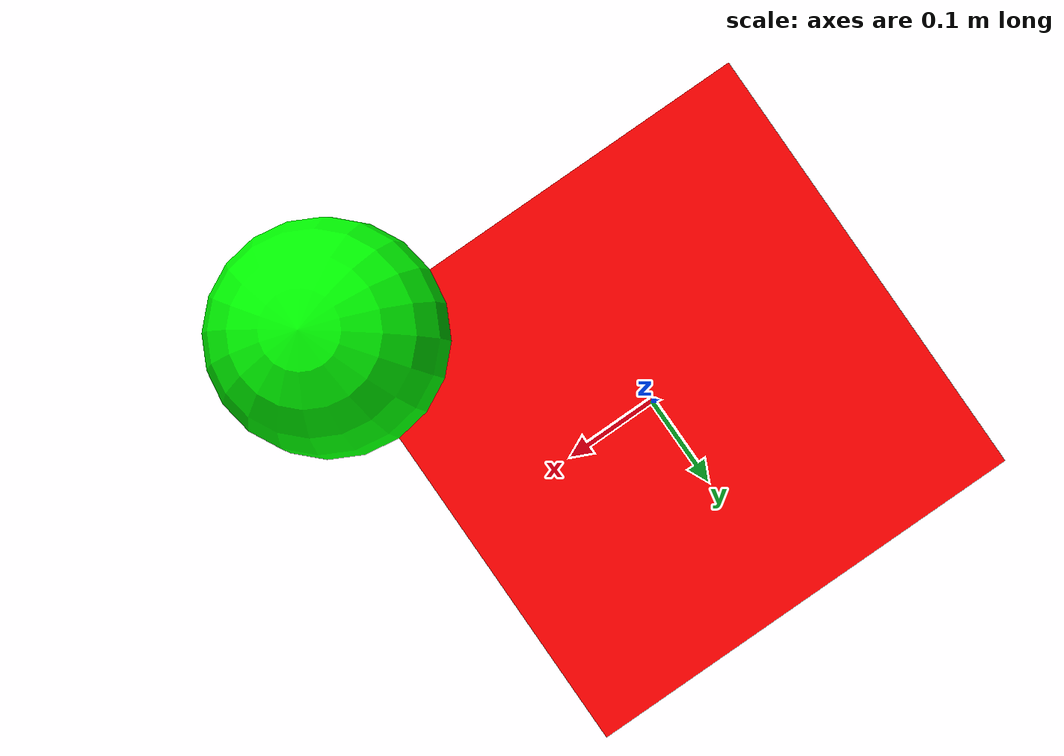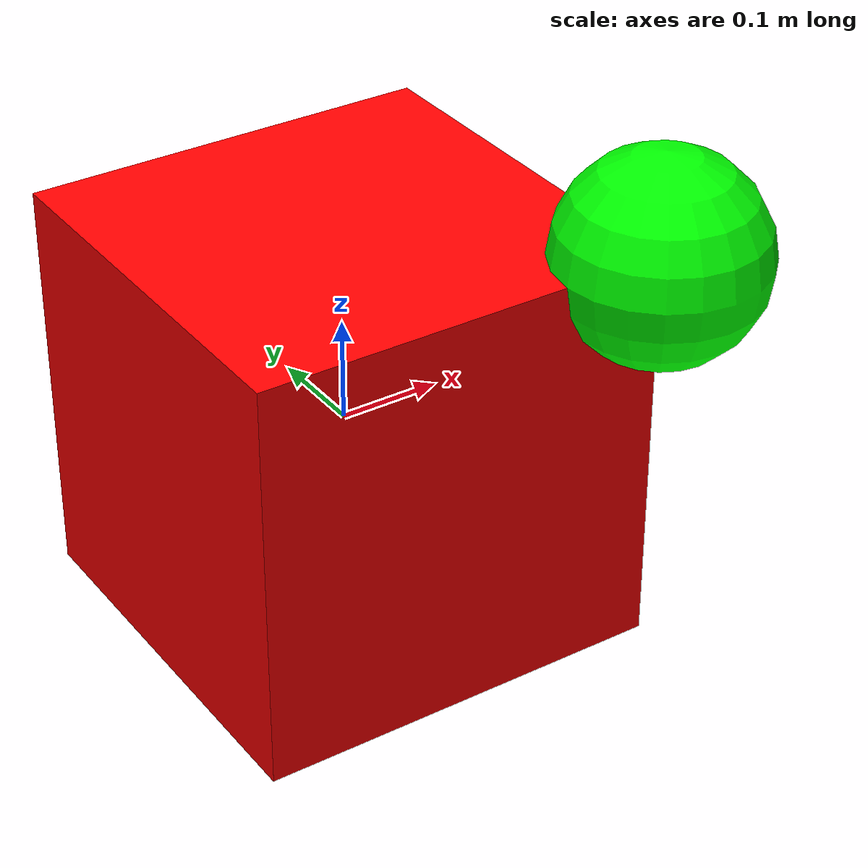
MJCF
<mujoco>
  <worldbody>
    <light name="top" pos="0 0 1"/>
    <body name="box_and_sphere" euler="0 0 -90">
      <joint name="swing" type="hinge" axis="1 -1 0" pos="-.2 -.2 -.2"/>
      <geom name="red_box" type="box" size=".2 .2 .2" rgba="1 0 0 1"/>
      <geom name="green_sphere" pos=".2 .2 .2" size=".1" rgba="0 1 0 1"/>
    </body>
  </worldbody>
</mujoco>
